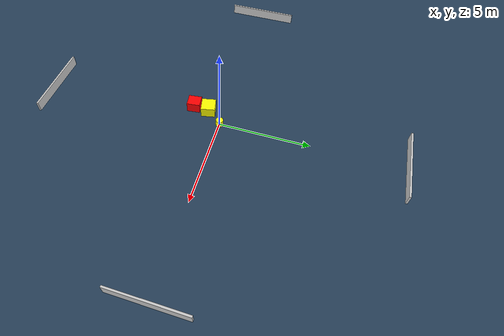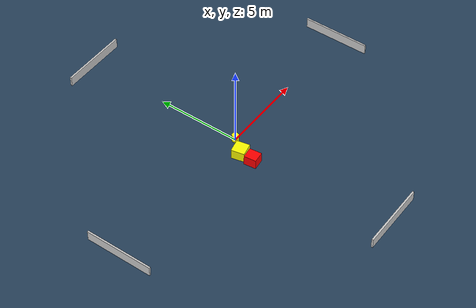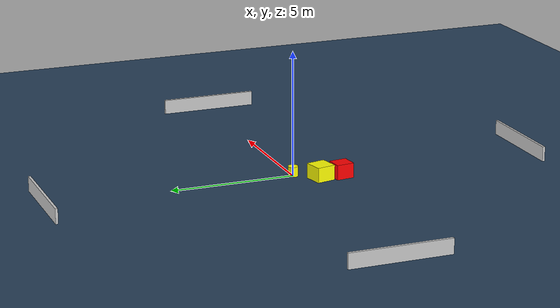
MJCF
<?xml version="1.0" ?>
<mujoco model="generated_environment">
  <option timestep="0.01" integrator="RK4" cone="elliptic"/>
  <default>
    <geom density="1"/>
  </default>
  <asset>
    <texture builtin="gradient" height="3072" name="skybox" rgb1="0.3 0.5 0.7" rgb2="0 0 0" type="skybox" width="512"/>
    <texture builtin="checker" height="300" name="groundplane" rgb1="0.2 0.3 0.4" rgb2="0.1 0.2 0.3" type="2d" width="300"/>
    <material name="groundplane" reflectance="0.2" texrepeat="5 5" texture="groundplane"/>
  </asset>
  <worldbody>
    <light dir="0 0 -1" directional="true" pos="0 0 1.5"/>
    <geom condim="3" friction="0.5 0.005 0.001" material="groundplane" name="floor" pos="0 0 0" size="0 0 0.05" type="plane"/>
    <body name="walls">
      <geom name="wall_1" condim="4" pos="-10.0 0.0 0.3" rgba="0.800000011920929 0.800000011920929 0.800000011920929 1.0" size="0.05 2.0 0.3" type="box"/>
      <geom name="wall_2" condim="4" pos="10.0 0.0 0.3" rgba="0.800000011920929 0.800000011920929 0.800000011920929 1.0" size="0.05 2.0 0.3" type="box"/>
      <geom name="wall_3" condim="4" pos="0.0 -10.0 0.3" rgba="0.800000011920929 0.800000011920929 0.800000011920929 1.0" size="2.0 0.05 0.3" type="box"/>
      <geom name="wall_4" condim="4" pos="0.0 10.0 0.3" rgba="0.800000011920929 0.800000011920929 0.800000011920929 1.0" size="2.0 0.05 0.3" type="box"/>
    </body>
    <body name="robot">
      <joint name="joint_x" type="slide" pos="0 0 0" axis="1 0 0"/>
      <joint name="joint_y" type="slide" pos="0 0 0" axis="0 1 0"/>
      <geom name="robot" type="cylinder" pos="0.0 0.0 0.2" size="0.2 0.2 0.0" mass="5.0" friction="1.0 0.005 0.0001" condim="4" rgba="1.0 1.0 0.0 1.0"/>
    </body>
    <body name="obstacle_1_movable">
      <geom name="obstacle_1_movable" condim="4" pos="-0.7445339425665364 -0.8734166559727277 0.3" euler="0 0 281.8608843462187" friction="0.0 0.005 0.001" rgba="1.0 1.0 0.0 1.0" size="0.385728314242227 0.38835219366804974 0.3" type="box" mass="0.1"/>
      <joint type="free"/>
    </body>
    <body name="obstacle_2_static">
      <geom name="obstacle_2_static" condim="4" pos="-0.7940621656015897 -1.7200419214955314 0.3" euler="0 0 96.36661320892502" friction="0.0 0.005 0.001" rgba="1.0 0.0 0.0 1.0" size="0.3597955749024346 0.32856892348423383 0.3" type="box"/>
    </body>
  </worldbody>
  <actuator>
    <motor name="actuator_x" joint="joint_x" gear="1" ctrlrange="-1 1"/>
    <motor name="actuator_y" joint="joint_y" gear="1" ctrlrange="-1 1"/>
  </actuator>
</mujoco>
